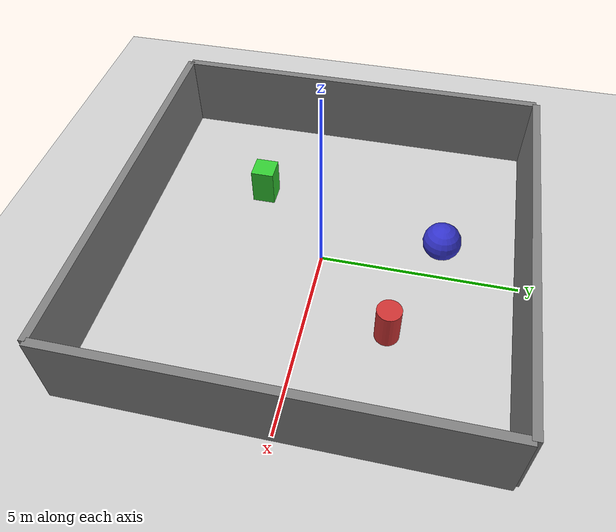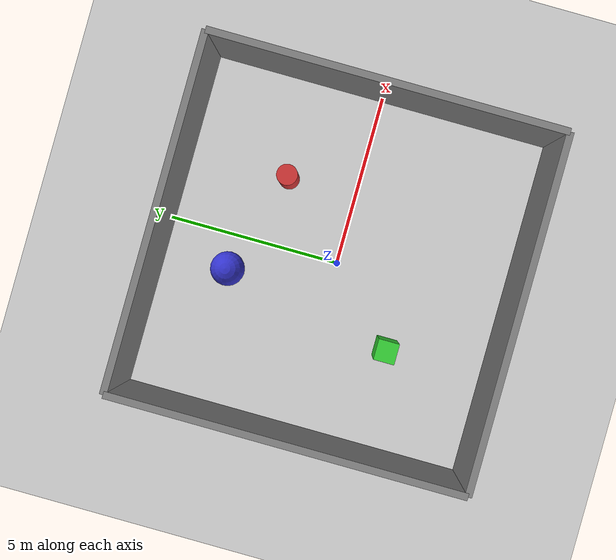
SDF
<?xml version="1.0"?>
<sdf version="1.6">
  <world name="turtlebot_world">

    <!-- Light source -->
    <light name='sun' type='directional'>
      <cast_shadows>true</cast_shadows>
      <pose>0 0 10 0 0 0</pose>
      <diffuse>0.8 0.8 0.8 1</diffuse>
      <specular>0.2 0.2 0.2 1</specular>
      <attenuation>
        <range>1000</range>
        <constant>0.9</constant>
        <linear>0.01</linear>
        <quadratic>0.001</quadratic>
      </attenuation>
      <direction>-0.5 0.1 -0.9</direction>
    </light>

    <!-- Ground plane -->
    <model name='ground_plane'>
      <static>true</static>
      <link name='link'>
        <collision name='collision'>
          <geometry>
            <plane>
              <normal>0 0 1</normal>
              <size>100 100</size>
            </plane>
          </geometry>
          <surface>
            <friction>
              <ode>
                <mu>100</mu>
                <mu2>50</mu2>
              </ode>
            </friction>
          </surface>
        </collision>
        <visual name='visual'>
          <geometry>
            <plane>
              <normal>0 0 1</normal>
              <size>100 100</size>
            </plane>
          </geometry>
          <material>
            <ambient>0.8 0.8 0.8 1</ambient>
            <diffuse>0.8 0.8 0.8 1</diffuse>
          </material>
        </visual>
      </link>
    </model>

    <physics type="ode">
      <real_time_update_rate>1000.0</real_time_update_rate>
      <max_step_size>0.001</max_step_size>
      <real_time_factor>1</real_time_factor>
      <ode>
        <solver>
          <type>quick</type>
          <iters>150</iters>
          <precon_iters>0</precon_iters>
          <sor>1.400000</sor>
          <use_dynamic_moi_rescaling>1</use_dynamic_moi_rescaling>
        </solver>
        <constraints>
          <cfm>0.00001</cfm>
          <erp>0.2</erp>
          <contact_max_correcting_vel>2000.000000</contact_max_correcting_vel>
          <contact_surface_layer>0.01000</contact_surface_layer>
        </constraints>
      </ode>
    </physics>

    <model name="wall_1">
      <static>true</static>
      <pose>5 0 1 0 0 0</pose>
      <link name="link">
        <collision name="collision">
          <geometry>
            <box>
              <size>0.2 10 2</size>
            </box>
          </geometry>
        </collision>
        <visual name="visual">
          <geometry>
            <box>
              <size>0.2 10 2</size>
            </box>
          </geometry>
          <material>
            <ambient>0.5 0.5 0.5 1</ambient>
            <diffuse>0.5 0.5 0.5 1</diffuse>
          </material>
        </visual>
      </link>
    </model>

    <model name="wall_2">
      <static>true</static>
      <pose>-5 0 1 0 0 0</pose>
      <link name="link">
        <collision name="collision">
          <geometry>
            <box>
              <size>0.2 10 2</size>
            </box>
          </geometry>
        </collision>
        <visual name="visual">
          <geometry>
            <box>
              <size>0.2 10 2</size>
            </box>
          </geometry>
          <material>
            <ambient>0.5 0.5 0.5 1</ambient>
            <diffuse>0.5 0.5 0.5 1</diffuse>
          </material>
        </visual>
      </link>
    </model>

    <model name="wall_3">
      <static>true</static>
      <pose>0 5 1 0 0 1.5708</pose>
      <link name="link">
        <collision name="collision">
          <geometry>
            <box>
              <size>0.2 10 2</size>
            </box>
          </geometry>
        </collision>
        <visual name="visual">
          <geometry>
            <box>
              <size>0.2 10 2</size>
            </box>
          </geometry>
          <material>
            <ambient>0.5 0.5 0.5 1</ambient>
            <diffuse>0.5 0.5 0.5 1</diffuse>
          </material>
        </visual>
      </link>
    </model>

    <model name="wall_4">
      <static>true</static>
      <pose>0 -5 1 0 0 1.5708</pose>
      <link name="link">
        <collision name="collision">
          <geometry>
            <box>
              <size>0.2 10 2</size>
            </box>
          </geometry>
        </collision>
        <visual name="visual">
          <geometry>
            <box>
              <size>0.2 10 2</size>
            </box>
          </geometry>
          <material>
            <ambient>0.5 0.5 0.5 1</ambient>
            <diffuse>0.5 0.5 0.5 1</diffuse>
          </material>
        </visual>
      </link>
    </model>

    <model name="obstacle_1">
      <static>true</static>
      <pose>2 2 0.5 0 0 0</pose>
      <link name="link">
        <collision name="collision">
          <geometry>
            <cylinder>
              <radius>0.3</radius>
              <length>1</length>
            </cylinder>
          </geometry>
        </collision>
        <visual name="visual">
          <geometry>
            <cylinder>
              <radius>0.3</radius>
              <length>1</length>
            </cylinder>
          </geometry>
          <material>
            <ambient>0.8 0.2 0.2 1</ambient>
            <diffuse>0.8 0.2 0.2 1</diffuse>
          </material>
        </visual>
      </link>
    </model>

    <model name="obstacle_2">
      <static>true</static>
      <pose>-2 -2 0.5 0 0 0</pose>
      <link name="link">
        <collision name="collision">
          <geometry>
            <box>
              <size>0.6 0.6 1</size>
            </box>
          </geometry>
        </collision>
        <visual name="visual">
          <geometry>
            <box>
              <size>0.6 0.6 1</size>
            </box>
          </geometry>
          <material>
            <ambient>0.2 0.8 0.2 1</ambient>
            <diffuse>0.2 0.8 0.2 1</diffuse>
          </material>
        </visual>
      </link>
    </model>

    <model name="obstacle_3">
      <static>true</static>
      <pose>-1 3 0.25 0 0 0</pose>
      <link name="link">
        <collision name="collision">
          <geometry>
            <sphere>
              <radius>0.5</radius>
            </sphere>
          </geometry>
        </collision>
        <visual name="visual">
          <geometry>
            <sphere>
              <radius>0.5</radius>
            </sphere>
          </geometry>
          <material>
            <ambient>0.2 0.2 0.8 1</ambient>
            <diffuse>0.2 0.2 0.8 1</diffuse>
          </material>
        </visual>
      </link>
    </model>

    <gui fullscreen='0'>
      <camera name='user_camera'>
        <pose>-10 0 8 0 0.5 0</pose>
        <view_controller>orbit</view_controller>
      </camera>
    </gui>

  </world>
</sdf>
